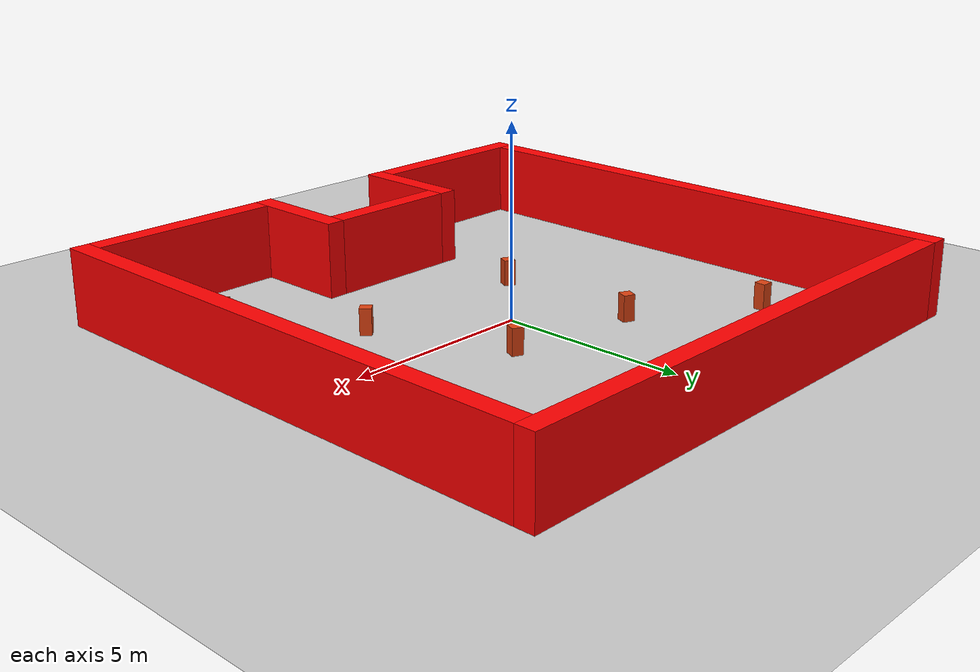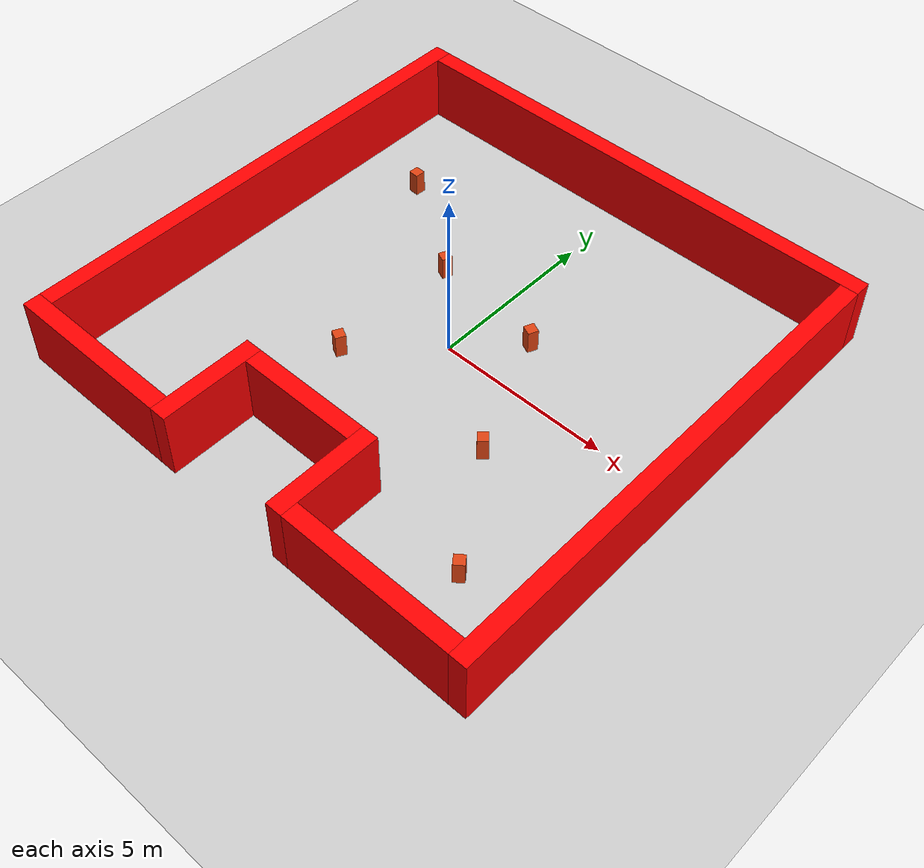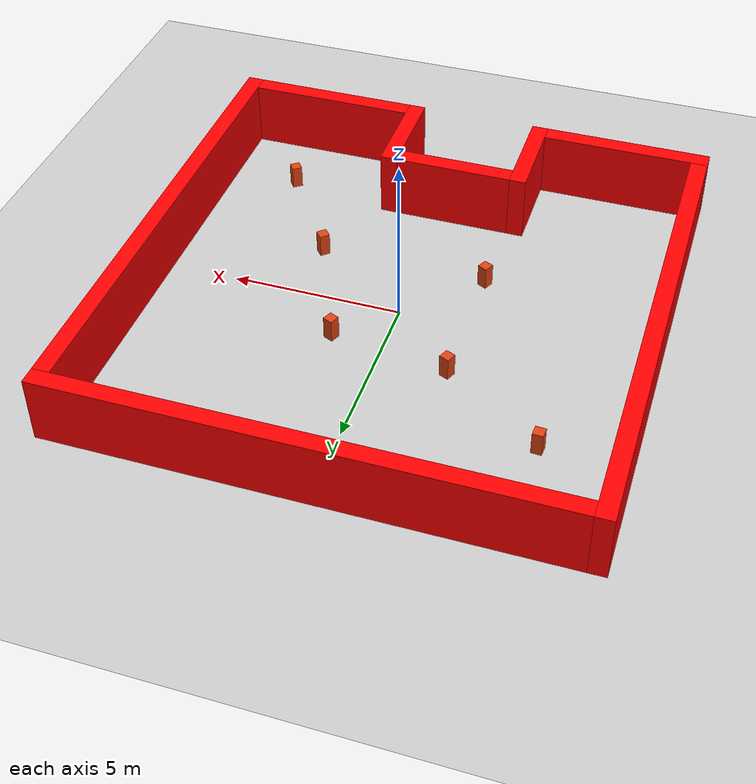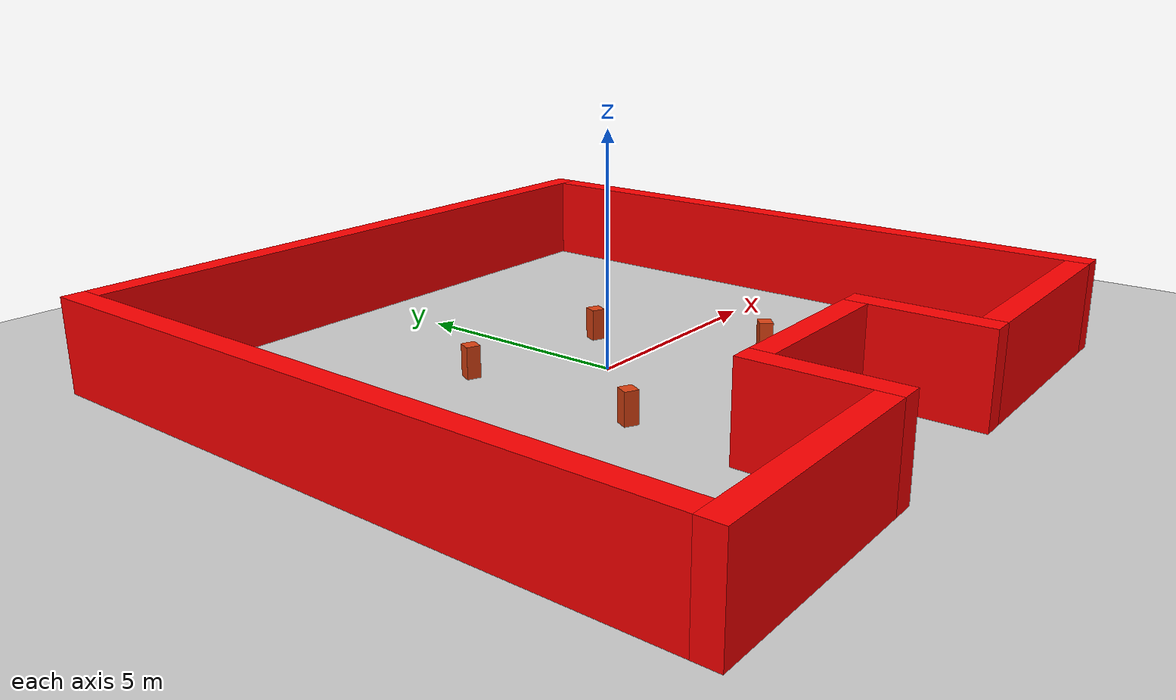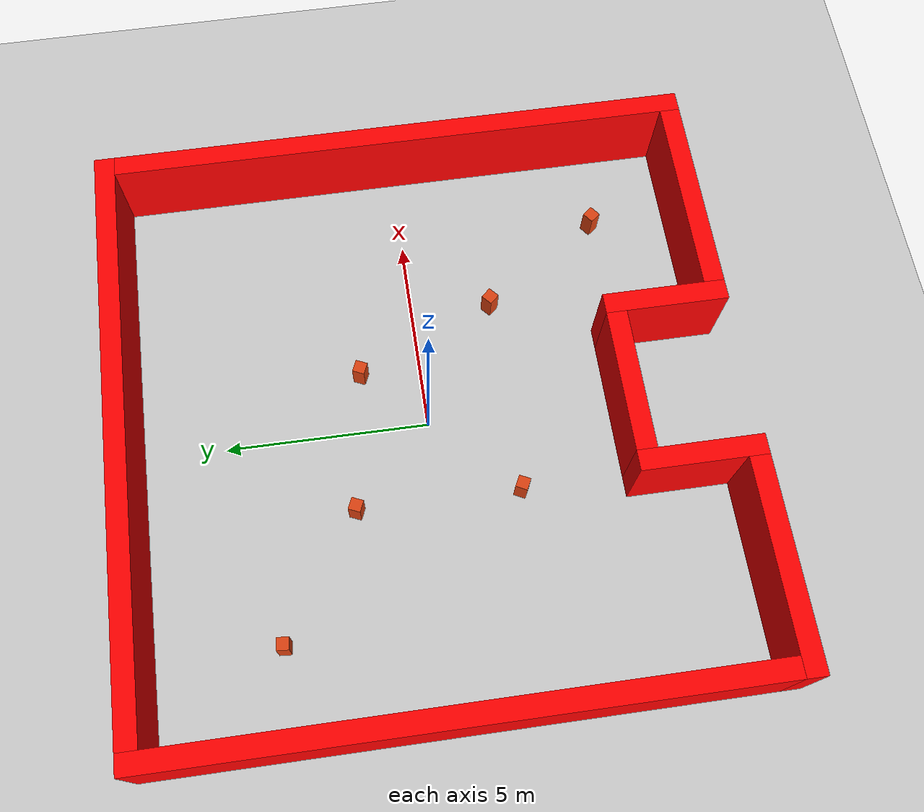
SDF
<sdf version='1.6'>
  <world name='my_world'>
    <physics type="ode">
      <max_step_size>0.001</max_step_size>
      <real_time_factor>1.0</real_time_factor>
    </physics>

        <light type="directional" name="sun">
            <cast_shadows>true</cast_shadows>
            <pose>0 0 10 0 0 0</pose>
            <diffuse>0.8 0.8 0.8 1</diffuse>
            <specular>0.2 0.2 0.2 1</specular>
            <attenuation>
                <range>1000</range>
                <constant>0.9</constant>
                <linear>0.01</linear>
                <quadratic>0.001</quadratic>
            </attenuation>
            <direction>-0.5 0.1 -0.9</direction>
        </light>

        <model name="ground_plane">
            <static>true</static>
            <link name="link">
                <collision name="collision">
                <geometry>
                    <plane>
                    <normal>0 0 1</normal>
                    </plane>
                </geometry>
                </collision>
                <visual name="visual">
                <geometry>
                    <plane>
                    <normal>0 0 1</normal>
                    <size>15 15</size>
                    </plane>
                </geometry>
                <material>
                    <ambient>0.8 0.8 0.8 1</ambient>
                    <diffuse>0.8 0.8 0.8 1</diffuse>
                    <specular>0.8 0.8 0.8 1</specular>
                </material>
                </visual>
            </link>
        </model>

    <!-- walls -->

    <model name='wall_1'>
    <static>true</static>
    <pose>7.25 -0.25 1 0 0 0</pose><!--pose relative to the world-->
    <link name='box'>
        <visual name='visual'>
            <geometry>
                <box>
                    <size>0.5 14.5 2.0</size>
                </box>
            </geometry>
            <!--let's add color to our link-->
            <material>
                <ambient>1 0 0 1</ambient>
                <diffuse>1 0 0 1</diffuse>
                <specular>1 0 0 1</specular>
            </material>
        </visual>
        <collision name='collision'>
            <geometry>
                <box>
                    <size>0.5 14.5 2.0</size>
                </box>
            </geometry>
        </collision>
    </link>
</model>

<model name='wall_2'>
    <static>true</static>
    <pose>-7.25 0.25 1 0 0 0</pose><!--pose relative to the world-->
    <link name='box'>
        <visual name='visual'>
            <geometry>
                <box>
                    <size>0.5 14.5 2.0</size>
                </box>
            </geometry>
            <!--let's add color to our link-->
            <material>
                <ambient>1 0 0 1</ambient>
                <diffuse>1 0 0 1</diffuse>
                <specular>1 0 0 1</specular>
            </material>
        </visual>
        <collision name='collision'>
            <geometry>
                <box>
                    <size>0.5 14.5 2.0</size>
                </box>
            </geometry>
        </collision>
    </link>
</model>

<model name='wall_3'>
    <static>true</static>
    <pose>0.25 7.25 1 0 0 0</pose><!--pose relative to the world-->
    <link name='box'>
        <visual name='visual'>
            <geometry>
                <box>
                    <size>14.5 0.5 2.0</size>
                </box>
            </geometry>
            <!--let's add color to our link-->
            <material>
                <ambient>1 0 0 1</ambient>
                <diffuse>1 0 0 1</diffuse>
                <specular>1 0 0 1</specular>
            </material>
        </visual>
        <collision name='collision'>
            <geometry>
                <box>
                    <size>14.5 0.5 2.0</size>
                </box>
            </geometry>
        </collision>
    </link>
</model>

<model name='wall_4_a'>
    <static>true</static>
    <pose>4.5 -7.25 1 0 0 0</pose><!--pose relative to the world-->
    <link name='box'>
        <visual name='visual'>
            <geometry>
                <box>
                    <size>5 0.5 2.0</size>
                </box>
            </geometry>
            <!--let's add color to our link-->
            <material>
                <ambient>1 0 0 1</ambient>
                <diffuse>1 0 0 1</diffuse>
                <specular>1 0 0 1</specular>
            </material>
        </visual>
        <collision name='collision'>
            <geometry>
                <box>
                    <size>5 0.5 2.0</size>
                </box>
            </geometry>
        </collision>
    </link>
</model>

<model name='wall_4_b'>
    <static>true</static>
    <pose>-5 -7.25 1 0 0 0</pose><!--pose relative to the world-->
    <link name='box'>
        <visual name='visual'>
            <geometry>
                <box>
                    <size>5 0.5 2.0</size>
                </box>
            </geometry>
            <!--let's add color to our link-->
            <material>
                <ambient>1 0 0 1</ambient>
                <diffuse>1 0 0 1</diffuse>
                <specular>1 0 0 1</specular>
            </material>
        </visual>
        <collision name='collision'>
            <geometry>
                <box>
                    <size>5 0.5 2.0</size>
                </box>
            </geometry>
        </collision>
    </link>
</model>

<model name='wall_4_c'>
    <static>true</static>
    <pose>1.75 -6 1 0 0 0</pose><!--pose relative to the world-->
    <link name='box'>
        <visual name='visual'>
            <geometry>
                <box>
                    <size>0.5 3 2.0</size>
                </box>
            </geometry>
            <!--let's add color to our link-->
            <material>
                <ambient>1 0 0 1</ambient>
                <diffuse>1 0 0 1</diffuse>
                <specular>1 0 0 1</specular>
            </material>
        </visual>
        <collision name='collision'>
            <geometry>
                <box>
                    <size>0.5 3 2.0</size>
                </box>
            </geometry>
        </collision>
    </link>
</model>

<model name='wall_4_d'>
    <static>true</static>
    <pose>-2.25 -6 1 0 0 0</pose><!--pose relative to the world-->
    <link name='box'>
        <visual name='visual'>
            <geometry>
                <box>
                    <size>0.5 3 2.0</size>
                </box>
            </geometry>
            <!--let's add color to our link-->
            <material>
                <ambient>1 0 0 1</ambient>
                <diffuse>1 0 0 1</diffuse>
                <specular>1 0 0 1</specular>
            </material>
        </visual>
        <collision name='collision'>
            <geometry>
                <box>
                    <size>0.5 3 2.0</size>
                </box>
            </geometry>
        </collision>
    </link>
</model>

<model name='wall_4_e'>
    <static>true</static>
    <pose>-0.25 -4.75 1 0 0 0</pose><!--pose relative to the world-->
    <link name='box'>
        <visual name='visual'>
            <geometry>
                <box>
                    <size>3.5 0.5 2.0</size>
                </box>
            </geometry>
            <!--let's add color to our link-->
            <material>
                <ambient>1 0 0 1</ambient>
                <diffuse>1 0 0 1</diffuse>
                <specular>1 0 0 1</specular>
            </material>
        </visual>
        <collision name='collision'>
            <geometry>
                <box>
                    <size>3.5 0.5 2.0</size>
                </box>
            </geometry>
        </collision>
    </link>
</model>

<model name='obstacle_1'>
    <static>true</static>
    <pose>-5 4 0.3 0 0 1.5</pose>
    <link name='box'>
        <visual name='visual'>
            <geometry>
                <box>
                    <size>0.3 0.3 0.75</size>
                </box>
            </geometry>
            <!--let's add color to our link-->
            <material>
                <ambient>0.87 0.26 0.07 1</ambient>
                <diffuse>0.87 0.26 0.07 1</diffuse>
                <specular>0.87 0.26 0.07 1</specular>
            </material>
        </visual>
        <collision name='collision'>
            <geometry>
                <box>
                    <size>0.3 0.3 0.75</size>
                </box>
            </geometry>
        </collision>
    </link>
</model>

<model name='obstacle_2'>
    <static>true</static>
    <pose> 3 -2 0.3 0 0 2.3</pose>
    <link name='box'>
        <visual name='visual'>
            <geometry>
                <box>
                    <size>0.3 0.3 0.75</size>
                </box>
            </geometry>
            <!--let's add color to our link-->
            <material>
                <ambient>0.87 0.26 0.07 1</ambient>
                <diffuse>0.87 0.26 0.07 1</diffuse>
                <specular>0.87 0.26 0.07 1</specular>
            </material>
        </visual>
        <collision name='collision'>
            <geometry>
                <box>
                    <size>0.3 0.3 0.75</size>
                </box>
            </geometry>
        </collision>
    </link>
</model>

<model name='obstacle_3'>
    <static>true</static>
    <pose>5 -5 0.3 0 0 3.8</pose>
    <link name='box'>
        <visual name='visual'>
            <geometry>
                <box>
                    <size>0.3 0.3 0.75</size>
                </box>
            </geometry>
            <!--let's add color to our link-->
            <material>
                <ambient>0.87 0.26 0.07 1</ambient>
                <diffuse>0.87 0.26 0.07 1</diffuse>
                <specular>0.87 0.26 0.07 1</specular>
            </material>
        </visual>
        <collision name='collision'>
            <geometry>
                <box>
                    <size>0.3 0.3 0.75</size>
                </box>
            </geometry>
        </collision>
    </link>
</model>

<model name='obstacle_4'>
    <static>true</static>
    <pose>-2 -2 0.3 0 0 1.1</pose>
    <link name='box'>
        <visual name='visual'>
            <geometry>
                <box>
                    <size>0.3 0.3 0.75</size>
                </box>
            </geometry>
            <!--let's add color to our link-->
            <material>
                <ambient>0.87 0.26 0.07 1</ambient>
                <diffuse>0.87 0.26 0.07 1</diffuse>
                <specular>0.87 0.26 0.07 1</specular>
            </material>
        </visual>
        <collision name='collision'>
            <geometry>
                <box>
                    <size>0.3 0.3 0.75</size>
                </box>
            </geometry>
        </collision>
    </link>
</model>

<model name='obstacle_5'>
    <static>true</static>
    <pose>-2 2 0.3 0 0 4.3</pose>
    <link name='box'>
        <visual name='visual'>
            <geometry>
                <box>
                    <size>0.3 0.3 0.75</size>
                </box>
            </geometry>
            <!--let's add color to our link-->
            <material>
                <ambient>0.87 0.26 0.07 1</ambient>
                <diffuse>0.87 0.26 0.07 1</diffuse>
                <specular>0.87 0.26 0.07 1</specular>
            </material>
        </visual>
        <collision name='collision'>
            <geometry>
                <box>
                    <size>0.3 0.3 0.75</size>
                </box>
            </geometry>
        </collision>
    </link>
</model>

<model name='obstacle_6'>
    <static>true</static>
    <pose>1.5 1.5 0.3 0 0 4.3</pose>
    <link name='box'>
        <visual name='visual'>
            <geometry>
                <box>
                    <size>0.3 0.3 0.75</size>
                </box>
            </geometry>
            <!--let's add color to our link-->
            <material>
                <ambient>0.87 0.26 0.07 1</ambient>
                <diffuse>0.87 0.26 0.07 1</diffuse>
                <specular>0.87 0.26 0.07 1</specular>
            </material>
        </visual>
        <collision name='collision'>
            <geometry>
                <box>
                    <size>0.3 0.3 0.75</size>
                </box>
            </geometry>
        </collision>
    </link>
</model>

    </world>
</sdf>
